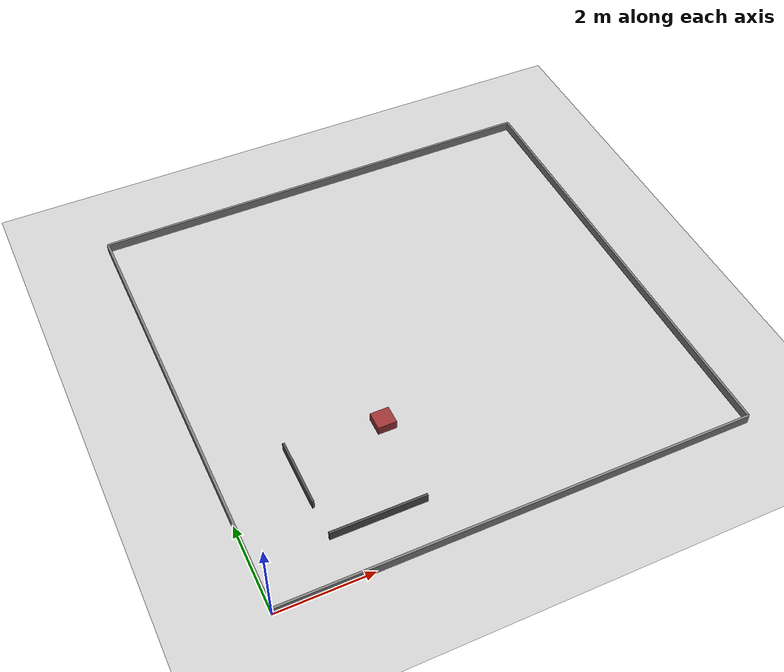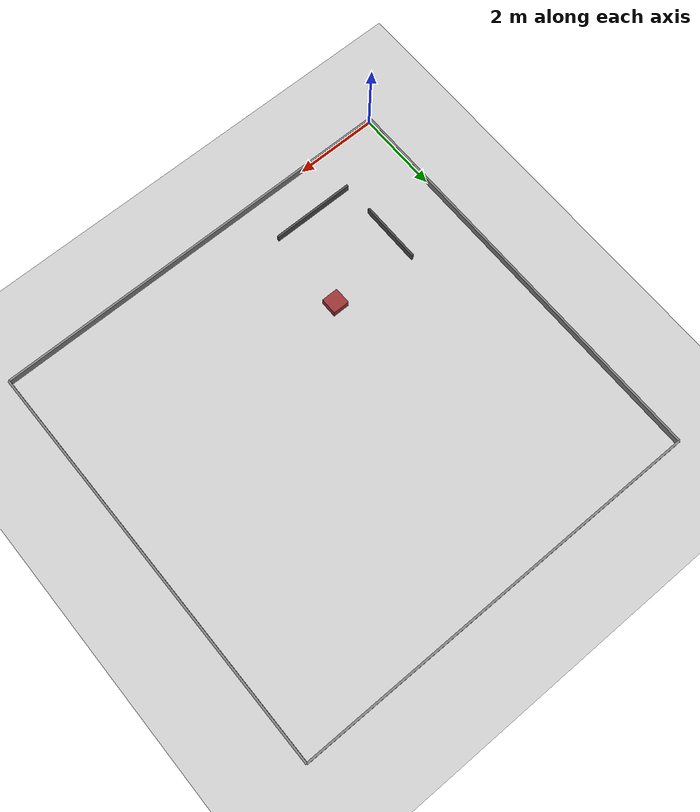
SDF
<?xml version="1.0"?>
<sdf version="1.6">
  <world name="test_field">

    <!-- Physics -->
    <physics type="ode">
      <max_step_size>0.001</max_step_size>
      <real_time_factor>1.0</real_time_factor>
    </physics>

    <!-- Lighting -->
    <include>
      <uri>model://sun</uri>
    </include>

    <!-- Ground plane -->
    <model name="ground_plane">
      <static>true</static>
      <link name="link">
        <collision name="collision">
          <geometry>
            <plane>
              <normal>0 0 1</normal>
              <size>10 10</size>
            </plane>
          </geometry>
        </collision>
        <visual name="visual">
          <geometry>
            <plane>
              <normal>0 0 1</normal>
              <size>10 10</size>
            </plane>
          </geometry>
          <material>
            <ambient>0.8 0.8 0.8 1</ambient>
            <diffuse>0.8 0.8 0.8 1</diffuse>
          </material>
        </visual>
      </link>
    </model>

    <!-- Obstacle 1: Wall -->
    <model name="wall_1">
      <static>true</static>
      <link name="link">
        <collision name="collision">
          <geometry>
            <box><size>2.0 0.05 0.2</size></box>
          </geometry>
        </collision>
        <visual name="visual">
          <geometry>
            <box><size>2.0 0.05 0.2</size></box>
          </geometry>
          <material>
            <ambient>0.3 0.3 0.3 1</ambient>
          </material>
        </visual>
      </link>
      <pose>2.5 1.0 0.1 0 0 0</pose>
    </model>

    <!-- Obstacle 2: Wall -->
    <model name="wall_2">
      <static>true</static>
      <link name="link">
        <collision name="collision">
          <geometry>
            <box><size>0.05 1.5 0.2</size></box>
          </geometry>
        </collision>
        <visual name="visual">
          <geometry>
            <box><size>0.05 1.5 0.2</size></box>
          </geometry>
          <material>
            <ambient>0.3 0.3 0.3 1</ambient>
          </material>
        </visual>
      </link>
      <pose>1.5 2.5 0.1 0 0 0</pose>
    </model>

    <!-- Obstacle 3: Box -->
    <model name="box_1">
      <static>true</static>
      <link name="link">
        <collision name="collision">
          <geometry>
            <box><size>0.4 0.4 0.2</size></box>
          </geometry>
        </collision>
        <visual name="visual">
          <geometry>
            <box><size>0.4 0.4 0.2</size></box>
          </geometry>
          <material>
            <ambient>0.6 0.2 0.2 1</ambient>
          </material>
        </visual>
      </link>
      <pose>3.5 3.0 0.1 0 0 0</pose>
    </model>

    <!-- Boundary walls -->
    <model name="boundary_north">
      <static>true</static>
      <link name="link">
        <collision name="collision">
          <geometry><box><size>10.0 0.05 0.2</size></box></geometry>
        </collision>
        <visual name="visual">
          <geometry><box><size>10.0 0.05 0.2</size></box></geometry>
          <material><ambient>0.5 0.5 0.5 1</ambient></material>
        </visual>
      </link>
      <pose>5.0 10.0 0.1 0 0 0</pose>
    </model>

    <model name="boundary_south">
      <static>true</static>
      <link name="link">
        <collision name="collision">
          <geometry><box><size>10.0 0.05 0.2</size></box></geometry>
        </collision>
        <visual name="visual">
          <geometry><box><size>10.0 0.05 0.2</size></box></geometry>
          <material><ambient>0.5 0.5 0.5 1</ambient></material>
        </visual>
      </link>
      <pose>5.0 0.0 0.1 0 0 0</pose>
    </model>

    <model name="boundary_east">
      <static>true</static>
      <link name="link">
        <collision name="collision">
          <geometry><box><size>0.05 10.0 0.2</size></box></geometry>
        </collision>
        <visual name="visual">
          <geometry><box><size>0.05 10.0 0.2</size></box></geometry>
          <material><ambient>0.5 0.5 0.5 1</ambient></material>
        </visual>
      </link>
      <pose>10.0 5.0 0.1 0 0 0</pose>
    </model>

    <model name="boundary_west">
      <static>true</static>
      <link name="link">
        <collision name="collision">
          <geometry><box><size>0.05 10.0 0.2</size></box></geometry>
        </collision>
        <visual name="visual">
          <geometry><box><size>0.05 10.0 0.2</size></box></geometry>
          <material><ambient>0.5 0.5 0.5 1</ambient></material>
        </visual>
      </link>
      <pose>0.0 5.0 0.1 0 0 0</pose>
    </model>

  </world>
</sdf>
